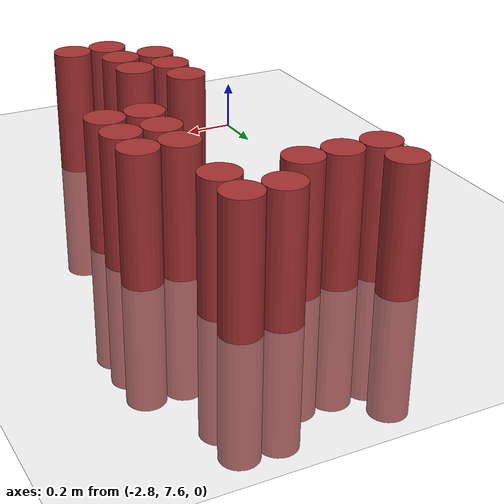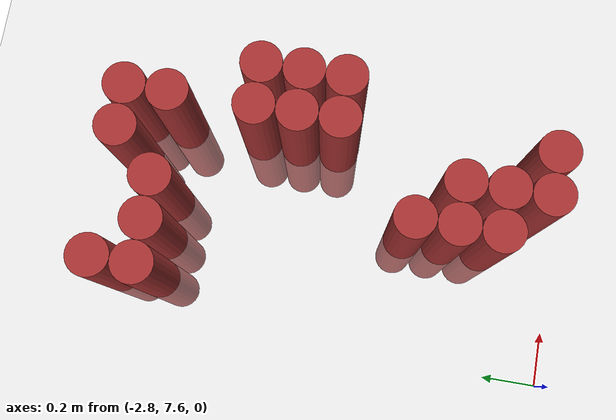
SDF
<sdf version="1.6">
 <world name="default">
  <model name="ground_plane">
   <static>1</static>
   <link name="link">
    <collision name="collision">
     <geometry><plane><normal>0 0 1</normal><size>100 100</size></plane></geometry>
     <surface><friction><ode><mu>100</mu><mu2>50</mu2></ode></friction></surface>
    </collision>
    <visual name="visual">
     <cast_shadows>0</cast_shadows>
     <geometry><plane><normal>0 0 1</normal><size>100 100</size></plane></geometry>
     <material>
      <script><uri>file://media/materials/scripts/gazebo.material</uri><name>Gazebo/Grey</name></script>
     </material>
    </visual>
   </link>
  </model>
  <model name="unit_cylinder_191">
   <static>1</static>
   <pose>-2.625000 9.075000 0.000000 0.000000 0.000000 0.000000</pose>
   <link name="link">
    <inertial>
     <mass>1</mass>
     <inertia><ixx>0.145833</ixx><ixy>0</ixy><ixz>0</ixz><iyy>0.145833</iyy><iyz>0</iyz><izz>0.125</izz></inertia>
    </inertial>
    <collision name="collision">
     <geometry><cylinder><radius>0.075000</radius><length>1</length></cylinder></geometry>
    </collision>
    <visual name="visual">
     <geometry><cylinder><radius>0.075000</radius><length>1</length></cylinder></geometry>
     <material>
      <ambient>0.648000 0.192000 0.192000 1</ambient>
      <diffuse>0.648000 0.192000 0.192000 1</diffuse>
     </material>
     <material>
      <script><name>Gazebo/Grey</name><uri>file://media/materials/scripts/gazebo.material</uri></script>
     </material>
    </visual>
    <sensor name="sensor_contact" type="contact"><contact><collision>collision</collision></contact></sensor>
   </link>
   <plugin filename="gz-sim-touchplugin-system" name="gz::sim::systems::TouchPlugin">
    <target>robot</target>
    <namespace>robot</namespace>
    <time>0.001</time>
    <enabled>true</enabled>
   </plugin>
  </model>
  <model name="unit_cylinder_192">
   <static>1</static>
   <pose>-2.625000 9.225000 0.000000 0.000000 0.000000 0.000000</pose>
   <link name="link">
    <inertial>
     <mass>1</mass>
     <inertia><ixx>0.145833</ixx><ixy>0</ixy><ixz>0</ixz><iyy>0.145833</iyy><iyz>0</iyz><izz>0.125</izz></inertia>
    </inertial>
    <collision name="collision">
     <geometry><cylinder><radius>0.075000</radius><length>1</length></cylinder></geometry>
    </collision>
    <visual name="visual">
     <geometry><cylinder><radius>0.075000</radius><length>1</length></cylinder></geometry>
     <material>
      <ambient>0.648000 0.192000 0.192000 1</ambient>
      <diffuse>0.648000 0.192000 0.192000 1</diffuse>
     </material>
     <material>
      <script><name>Gazebo/Grey</name><uri>file://media/materials/scripts/gazebo.material</uri></script>
     </material>
    </visual>
    <sensor name="sensor_contact" type="contact"><contact><collision>collision</collision></contact></sensor>
   </link>
   <plugin filename="gz-sim-touchplugin-system" name="gz::sim::systems::TouchPlugin">
    <target>robot</target>
    <namespace>robot</namespace>
    <time>0.001</time>
    <enabled>true</enabled>
   </plugin>
  </model>
  <model name="unit_cylinder_199">
   <static>1</static>
   <pose>-2.475000 9.075000 0.000000 0.000000 0.000000 0.000000</pose>
   <link name="link">
    <inertial>
     <mass>1</mass>
     <inertia><ixx>0.145833</ixx><ixy>0</ixy><ixz>0</ixz><iyy>0.145833</iyy><iyz>0</iyz><izz>0.125</izz></inertia>
    </inertial>
    <collision name="collision">
     <geometry><cylinder><radius>0.075000</radius><length>1</length></cylinder></geometry>
    </collision>
    <visual name="visual">
     <geometry><cylinder><radius>0.075000</radius><length>1</length></cylinder></geometry>
     <material>
      <ambient>0.648000 0.192000 0.192000 1</ambient>
      <diffuse>0.648000 0.192000 0.192000 1</diffuse>
     </material>
     <material>
      <script><name>Gazebo/Grey</name><uri>file://media/materials/scripts/gazebo.material</uri></script>
     </material>
    </visual>
    <sensor name="sensor_contact" type="contact"><contact><collision>collision</collision></contact></sensor>
   </link>
   <plugin filename="gz-sim-touchplugin-system" name="gz::sim::systems::TouchPlugin">
    <target>robot</target>
    <namespace>robot</namespace>
    <time>0.001</time>
    <enabled>true</enabled>
   </plugin>
  </model>
  <model name="unit_cylinder_206">
   <static>1</static>
   <pose>-2.325000 7.875000 0.000000 0.000000 0.000000 0.000000</pose>
   <link name="link">
    <inertial>
     <mass>1</mass>
     <inertia><ixx>0.145833</ixx><ixy>0</ixy><ixz>0</ixz><iyy>0.145833</iyy><iyz>0</iyz><izz>0.125</izz></inertia>
    </inertial>
    <collision name="collision">
     <geometry><cylinder><radius>0.075000</radius><length>1</length></cylinder></geometry>
    </collision>
    <visual name="visual">
     <geometry><cylinder><radius>0.075000</radius><length>1</length></cylinder></geometry>
     <material>
      <ambient>0.648000 0.192000 0.192000 1</ambient>
      <diffuse>0.648000 0.192000 0.192000 1</diffuse>
     </material>
     <material>
      <script><name>Gazebo/Grey</name><uri>file://media/materials/scripts/gazebo.material</uri></script>
     </material>
    </visual>
    <sensor name="sensor_contact" type="contact"><contact><collision>collision</collision></contact></sensor>
   </link>
   <plugin filename="gz-sim-touchplugin-system" name="gz::sim::systems::TouchPlugin">
    <target>robot</target>
    <namespace>robot</namespace>
    <time>0.001</time>
    <enabled>true</enabled>
   </plugin>
  </model>
  <model name="unit_cylinder_207">
   <static>1</static>
   <pose>-2.325000 8.025000 0.000000 0.000000 0.000000 0.000000</pose>
   <link name="link">
    <inertial>
     <mass>1</mass>
     <inertia><ixx>0.145833</ixx><ixy>0</ixy><ixz>0</ixz><iyy>0.145833</iyy><iyz>0</iyz><izz>0.125</izz></inertia>
    </inertial>
    <collision name="collision">
     <geometry><cylinder><radius>0.075000</radius><length>1</length></cylinder></geometry>
    </collision>
    <visual name="visual">
     <geometry><cylinder><radius>0.075000</radius><length>1</length></cylinder></geometry>
     <material>
      <ambient>0.648000 0.192000 0.192000 1</ambient>
      <diffuse>0.648000 0.192000 0.192000 1</diffuse>
     </material>
     <material>
      <script><name>Gazebo/Grey</name><uri>file://media/materials/scripts/gazebo.material</uri></script>
     </material>
    </visual>
    <sensor name="sensor_contact" type="contact"><contact><collision>collision</collision></contact></sensor>
   </link>
   <plugin filename="gz-sim-touchplugin-system" name="gz::sim::systems::TouchPlugin">
    <target>robot</target>
    <namespace>robot</namespace>
    <time>0.001</time>
    <enabled>true</enabled>
   </plugin>
  </model>
  <model name="unit_cylinder_208">
   <static>1</static>
   <pose>-2.325000 8.175000 0.000000 0.000000 0.000000 0.000000</pose>
   <link name="link">
    <inertial>
     <mass>1</mass>
     <inertia><ixx>0.145833</ixx><ixy>0</ixy><ixz>0</ixz><iyy>0.145833</iyy><iyz>0</iyz><izz>0.125</izz></inertia>
    </inertial>
    <collision name="collision">
     <geometry><cylinder><radius>0.075000</radius><length>1</length></cylinder></geometry>
    </collision>
    <visual name="visual">
     <geometry><cylinder><radius>0.075000</radius><length>1</length></cylinder></geometry>
     <material>
      <ambient>0.648000 0.192000 0.192000 1</ambient>
      <diffuse>0.648000 0.192000 0.192000 1</diffuse>
     </material>
     <material>
      <script><name>Gazebo/Grey</name><uri>file://media/materials/scripts/gazebo.material</uri></script>
     </material>
    </visual>
    <sensor name="sensor_contact" type="contact"><contact><collision>collision</collision></contact></sensor>
   </link>
   <plugin filename="gz-sim-touchplugin-system" name="gz::sim::systems::TouchPlugin">
    <target>robot</target>
    <namespace>robot</namespace>
    <time>0.001</time>
    <enabled>true</enabled>
   </plugin>
  </model>
  <model name="unit_cylinder_209">
   <static>1</static>
   <pose>-2.325000 9.075000 0.000000 0.000000 0.000000 0.000000</pose>
   <link name="link">
    <inertial>
     <mass>1</mass>
     <inertia><ixx>0.145833</ixx><ixy>0</ixy><ixz>0</ixz><iyy>0.145833</iyy><iyz>0</iyz><izz>0.125</izz></inertia>
    </inertial>
    <collision name="collision">
     <geometry><cylinder><radius>0.075000</radius><length>1</length></cylinder></geometry>
    </collision>
    <visual name="visual">
     <geometry><cylinder><radius>0.075000</radius><length>1</length></cylinder></geometry>
     <material>
      <ambient>0.648000 0.192000 0.192000 1</ambient>
      <diffuse>0.648000 0.192000 0.192000 1</diffuse>
     </material>
     <material>
      <script><name>Gazebo/Grey</name><uri>file://media/materials/scripts/gazebo.material</uri></script>
     </material>
    </visual>
    <sensor name="sensor_contact" type="contact"><contact><collision>collision</collision></contact></sensor>
   </link>
   <plugin filename="gz-sim-touchplugin-system" name="gz::sim::systems::TouchPlugin">
    <target>robot</target>
    <namespace>robot</namespace>
    <time>0.001</time>
    <enabled>true</enabled>
   </plugin>
  </model>
  <model name="unit_cylinder_213">
   <static>1</static>
   <pose>-2.175000 7.725000 0.000000 0.000000 0.000000 0.000000</pose>
   <link name="link">
    <inertial>
     <mass>1</mass>
     <inertia><ixx>0.145833</ixx><ixy>0</ixy><ixz>0</ixz><iyy>0.145833</iyy><iyz>0</iyz><izz>0.125</izz></inertia>
    </inertial>
    <collision name="collision">
     <geometry><cylinder><radius>0.075000</radius><length>1</length></cylinder></geometry>
    </collision>
    <visual name="visual">
     <geometry><cylinder><radius>0.075000</radius><length>1</length></cylinder></geometry>
     <material>
      <ambient>0.648000 0.192000 0.192000 1</ambient>
      <diffuse>0.648000 0.192000 0.192000 1</diffuse>
     </material>
     <material>
      <script><name>Gazebo/Grey</name><uri>file://media/materials/scripts/gazebo.material</uri></script>
     </material>
    </visual>
    <sensor name="sensor_contact" type="contact"><contact><collision>collision</collision></contact></sensor>
   </link>
   <plugin filename="gz-sim-touchplugin-system" name="gz::sim::systems::TouchPlugin">
    <target>robot</target>
    <namespace>robot</namespace>
    <time>0.001</time>
    <enabled>true</enabled>
   </plugin>
  </model>
  <model name="unit_cylinder_214">
   <static>1</static>
   <pose>-2.175000 7.875000 0.000000 0.000000 0.000000 0.000000</pose>
   <link name="link">
    <inertial>
     <mass>1</mass>
     <inertia><ixx>0.145833</ixx><ixy>0</ixy><ixz>0</ixz><iyy>0.145833</iyy><iyz>0</iyz><izz>0.125</izz></inertia>
    </inertial>
    <collision name="collision">
     <geometry><cylinder><radius>0.075000</radius><length>1</length></cylinder></geometry>
    </collision>
    <visual name="visual">
     <geometry><cylinder><radius>0.075000</radius><length>1</length></cylinder></geometry>
     <material>
      <ambient>0.648000 0.192000 0.192000 1</ambient>
      <diffuse>0.648000 0.192000 0.192000 1</diffuse>
     </material>
     <material>
      <script><name>Gazebo/Grey</name><uri>file://media/materials/scripts/gazebo.material</uri></script>
     </material>
    </visual>
    <sensor name="sensor_contact" type="contact"><contact><collision>collision</collision></contact></sensor>
   </link>
   <plugin filename="gz-sim-touchplugin-system" name="gz::sim::systems::TouchPlugin">
    <target>robot</target>
    <namespace>robot</namespace>
    <time>0.001</time>
    <enabled>true</enabled>
   </plugin>
  </model>
  <model name="unit_cylinder_215">
   <static>1</static>
   <pose>-2.175000 8.025000 0.000000 0.000000 0.000000 0.000000</pose>
   <link name="link">
    <inertial>
     <mass>1</mass>
     <inertia><ixx>0.145833</ixx><ixy>0</ixy><ixz>0</ixz><iyy>0.145833</iyy><iyz>0</iyz><izz>0.125</izz></inertia>
    </inertial>
    <collision name="collision">
     <geometry><cylinder><radius>0.075000</radius><length>1</length></cylinder></geometry>
    </collision>
    <visual name="visual">
     <geometry><cylinder><radius>0.075000</radius><length>1</length></cylinder></geometry>
     <material>
      <ambient>0.648000 0.192000 0.192000 1</ambient>
      <diffuse>0.648000 0.192000 0.192000 1</diffuse>
     </material>
     <material>
      <script><name>Gazebo/Grey</name><uri>file://media/materials/scripts/gazebo.material</uri></script>
     </material>
    </visual>
    <sensor name="sensor_contact" type="contact"><contact><collision>collision</collision></contact></sensor>
   </link>
   <plugin filename="gz-sim-touchplugin-system" name="gz::sim::systems::TouchPlugin">
    <target>robot</target>
    <namespace>robot</namespace>
    <time>0.001</time>
    <enabled>true</enabled>
   </plugin>
  </model>
  <model name="unit_cylinder_216">
   <static>1</static>
   <pose>-2.175000 9.225000 0.000000 0.000000 0.000000 0.000000</pose>
   <link name="link">
    <inertial>
     <mass>1</mass>
     <inertia><ixx>0.145833</ixx><ixy>0</ixy><ixz>0</ixz><iyy>0.145833</iyy><iyz>0</iyz><izz>0.125</izz></inertia>
    </inertial>
    <collision name="collision">
     <geometry><cylinder><radius>0.075000</radius><length>1</length></cylinder></geometry>
    </collision>
    <visual name="visual">
     <geometry><cylinder><radius>0.075000</radius><length>1</length></cylinder></geometry>
     <material>
      <ambient>0.648000 0.192000 0.192000 1</ambient>
      <diffuse>0.648000 0.192000 0.192000 1</diffuse>
     </material>
     <material>
      <script><name>Gazebo/Grey</name><uri>file://media/materials/scripts/gazebo.material</uri></script>
     </material>
    </visual>
    <sensor name="sensor_contact" type="contact"><contact><collision>collision</collision></contact></sensor>
   </link>
   <plugin filename="gz-sim-touchplugin-system" name="gz::sim::systems::TouchPlugin">
    <target>robot</target>
    <namespace>robot</namespace>
    <time>0.001</time>
    <enabled>true</enabled>
   </plugin>
  </model>
  <model name="unit_cylinder_217">
   <static>1</static>
   <pose>-2.025000 7.725000 0.000000 0.000000 0.000000 0.000000</pose>
   <link name="link">
    <inertial>
     <mass>1</mass>
     <inertia><ixx>0.145833</ixx><ixy>0</ixy><ixz>0</ixz><iyy>0.145833</iyy><iyz>0</iyz><izz>0.125</izz></inertia>
    </inertial>
    <collision name="collision">
     <geometry><cylinder><radius>0.075000</radius><length>1</length></cylinder></geometry>
    </collision>
    <visual name="visual">
     <geometry><cylinder><radius>0.075000</radius><length>1</length></cylinder></geometry>
     <material>
      <ambient>0.648000 0.192000 0.192000 1</ambient>
      <diffuse>0.648000 0.192000 0.192000 1</diffuse>
     </material>
     <material>
      <script><name>Gazebo/Grey</name><uri>file://media/materials/scripts/gazebo.material</uri></script>
     </material>
    </visual>
    <sensor name="sensor_contact" type="contact"><contact><collision>collision</collision></contact></sensor>
   </link>
   <plugin filename="gz-sim-touchplugin-system" name="gz::sim::systems::TouchPlugin">
    <target>robot</target>
    <namespace>robot</namespace>
    <time>0.001</time>
    <enabled>true</enabled>
   </plugin>
  </model>
  <model name="unit_cylinder_218">
   <static>1</static>
   <pose>-2.025000 8.475000 0.000000 0.000000 0.000000 0.000000</pose>
   <link name="link">
    <inertial>
     <mass>1</mass>
     <inertia><ixx>0.145833</ixx><ixy>0</ixy><ixz>0</ixz><iyy>0.145833</iyy><iyz>0</iyz><izz>0.125</izz></inertia>
    </inertial>
    <collision name="collision">
     <geometry><cylinder><radius>0.075000</radius><length>1</length></cylinder></geometry>
    </collision>
    <visual name="visual">
     <geometry><cylinder><radius>0.075000</radius><length>1</length></cylinder></geometry>
     <material>
      <ambient>0.648000 0.192000 0.192000 1</ambient>
      <diffuse>0.648000 0.192000 0.192000 1</diffuse>
     </material>
     <material>
      <script><name>Gazebo/Grey</name><uri>file://media/materials/scripts/gazebo.material</uri></script>
     </material>
    </visual>
    <sensor name="sensor_contact" type="contact"><contact><collision>collision</collision></contact></sensor>
   </link>
   <plugin filename="gz-sim-touchplugin-system" name="gz::sim::systems::TouchPlugin">
    <target>robot</target>
    <namespace>robot</namespace>
    <time>0.001</time>
    <enabled>true</enabled>
   </plugin>
  </model>
  <model name="unit_cylinder_219">
   <static>1</static>
   <pose>-2.025000 8.625000 0.000000 0.000000 0.000000 0.000000</pose>
   <link name="link">
    <inertial>
     <mass>1</mass>
     <inertia><ixx>0.145833</ixx><ixy>0</ixy><ixz>0</ixz><iyy>0.145833</iyy><iyz>0</iyz><izz>0.125</izz></inertia>
    </inertial>
    <collision name="collision">
     <geometry><cylinder><radius>0.075000</radius><length>1</length></cylinder></geometry>
    </collision>
    <visual name="visual">
     <geometry><cylinder><radius>0.075000</radius><length>1</length></cylinder></geometry>
     <material>
      <ambient>0.648000 0.192000 0.192000 1</ambient>
      <diffuse>0.648000 0.192000 0.192000 1</diffuse>
     </material>
     <material>
      <script><name>Gazebo/Grey</name><uri>file://media/materials/scripts/gazebo.material</uri></script>
     </material>
    </visual>
    <sensor name="sensor_contact" type="contact"><contact><collision>collision</collision></contact></sensor>
   </link>
   <plugin filename="gz-sim-touchplugin-system" name="gz::sim::systems::TouchPlugin">
    <target>robot</target>
    <namespace>robot</namespace>
    <time>0.001</time>
    <enabled>true</enabled>
   </plugin>
  </model>
  <model name="unit_cylinder_220">
   <static>1</static>
   <pose>-2.025000 8.775000 0.000000 0.000000 0.000000 0.000000</pose>
   <link name="link">
    <inertial>
     <mass>1</mass>
     <inertia><ixx>0.145833</ixx><ixy>0</ixy><ixz>0</ixz><iyy>0.145833</iyy><iyz>0</iyz><izz>0.125</izz></inertia>
    </inertial>
    <collision name="collision">
     <geometry><cylinder><radius>0.075000</radius><length>1</length></cylinder></geometry>
    </collision>
    <visual name="visual">
     <geometry><cylinder><radius>0.075000</radius><length>1</length></cylinder></geometry>
     <material>
      <ambient>0.648000 0.192000 0.192000 1</ambient>
      <diffuse>0.648000 0.192000 0.192000 1</diffuse>
     </material>
     <material>
      <script><name>Gazebo/Grey</name><uri>file://media/materials/scripts/gazebo.material</uri></script>
     </material>
    </visual>
    <sensor name="sensor_contact" type="contact"><contact><collision>collision</collision></contact></sensor>
   </link>
   <plugin filename="gz-sim-touchplugin-system" name="gz::sim::systems::TouchPlugin">
    <target>robot</target>
    <namespace>robot</namespace>
    <time>0.001</time>
    <enabled>true</enabled>
   </plugin>
  </model>
  <model name="unit_cylinder_221">
   <static>1</static>
   <pose>-2.025000 9.075000 0.000000 0.000000 0.000000 0.000000</pose>
   <link name="link">
    <inertial>
     <mass>1</mass>
     <inertia><ixx>0.145833</ixx><ixy>0</ixy><ixz>0</ixz><iyy>0.145833</iyy><iyz>0</iyz><izz>0.125</izz></inertia>
    </inertial>
    <collision name="collision">
     <geometry><cylinder><radius>0.075000</radius><length>1</length></cylinder></geometry>
    </collision>
    <visual name="visual">
     <geometry><cylinder><radius>0.075000</radius><length>1</length></cylinder></geometry>
     <material>
      <ambient>0.648000 0.192000 0.192000 1</ambient>
      <diffuse>0.648000 0.192000 0.192000 1</diffuse>
     </material>
     <material>
      <script><name>Gazebo/Grey</name><uri>file://media/materials/scripts/gazebo.material</uri></script>
     </material>
    </visual>
    <sensor name="sensor_contact" type="contact"><contact><collision>collision</collision></contact></sensor>
   </link>
   <plugin filename="gz-sim-touchplugin-system" name="gz::sim::systems::TouchPlugin">
    <target>robot</target>
    <namespace>robot</namespace>
    <time>0.001</time>
    <enabled>true</enabled>
   </plugin>
  </model>
  <model name="unit_cylinder_222">
   <static>1</static>
   <pose>-2.025000 9.225000 0.000000 0.000000 0.000000 0.000000</pose>
   <link name="link">
    <inertial>
     <mass>1</mass>
     <inertia><ixx>0.145833</ixx><ixy>0</ixy><ixz>0</ixz><iyy>0.145833</iyy><iyz>0</iyz><izz>0.125</izz></inertia>
    </inertial>
    <collision name="collision">
     <geometry><cylinder><radius>0.075000</radius><length>1</length></cylinder></geometry>
    </collision>
    <visual name="visual">
     <geometry><cylinder><radius>0.075000</radius><length>1</length></cylinder></geometry>
     <material>
      <ambient>0.648000 0.192000 0.192000 1</ambient>
      <diffuse>0.648000 0.192000 0.192000 1</diffuse>
     </material>
     <material>
      <script><name>Gazebo/Grey</name><uri>file://media/materials/scripts/gazebo.material</uri></script>
     </material>
    </visual>
    <sensor name="sensor_contact" type="contact"><contact><collision>collision</collision></contact></sensor>
   </link>
   <plugin filename="gz-sim-touchplugin-system" name="gz::sim::systems::TouchPlugin">
    <target>robot</target>
    <namespace>robot</namespace>
    <time>0.001</time>
    <enabled>true</enabled>
   </plugin>
  </model>
  <model name="unit_cylinder_223">
   <static>1</static>
   <pose>-1.875000 8.475000 0.000000 0.000000 0.000000 0.000000</pose>
   <link name="link">
    <inertial>
     <mass>1</mass>
     <inertia><ixx>0.145833</ixx><ixy>0</ixy><ixz>0</ixz><iyy>0.145833</iyy><iyz>0</iyz><izz>0.125</izz></inertia>
    </inertial>
    <collision name="collision">
     <geometry><cylinder><radius>0.075000</radius><length>1</length></cylinder></geometry>
    </collision>
    <visual name="visual">
     <geometry><cylinder><radius>0.075000</radius><length>1</length></cylinder></geometry>
     <material>
      <ambient>0.648000 0.192000 0.192000 1</ambient>
      <diffuse>0.648000 0.192000 0.192000 1</diffuse>
     </material>
     <material>
      <script><name>Gazebo/Grey</name><uri>file://media/materials/scripts/gazebo.material</uri></script>
     </material>
    </visual>
    <sensor name="sensor_contact" type="contact"><contact><collision>collision</collision></contact></sensor>
   </link>
   <plugin filename="gz-sim-touchplugin-system" name="gz::sim::systems::TouchPlugin">
    <target>robot</target>
    <namespace>robot</namespace>
    <time>0.001</time>
    <enabled>true</enabled>
   </plugin>
  </model>
  <model name="unit_cylinder_224">
   <static>1</static>
   <pose>-1.875000 8.625000 0.000000 0.000000 0.000000 0.000000</pose>
   <link name="link">
    <inertial>
     <mass>1</mass>
     <inertia><ixx>0.145833</ixx><ixy>0</ixy><ixz>0</ixz><iyy>0.145833</iyy><iyz>0</iyz><izz>0.125</izz></inertia>
    </inertial>
    <collision name="collision">
     <geometry><cylinder><radius>0.075000</radius><length>1</length></cylinder></geometry>
    </collision>
    <visual name="visual">
     <geometry><cylinder><radius>0.075000</radius><length>1</length></cylinder></geometry>
     <material>
      <ambient>0.648000 0.192000 0.192000 1</ambient>
      <diffuse>0.648000 0.192000 0.192000 1</diffuse>
     </material>
     <material>
      <script><name>Gazebo/Grey</name><uri>file://media/materials/scripts/gazebo.material</uri></script>
     </material>
    </visual>
    <sensor name="sensor_contact" type="contact"><contact><collision>collision</collision></contact></sensor>
   </link>
   <plugin filename="gz-sim-touchplugin-system" name="gz::sim::systems::TouchPlugin">
    <target>robot</target>
    <namespace>robot</namespace>
    <time>0.001</time>
    <enabled>true</enabled>
   </plugin>
  </model>
  <model name="unit_cylinder_225">
   <static>1</static>
   <pose>-1.875000 8.775000 0.000000 0.000000 0.000000 0.000000</pose>
   <link name="link">
    <inertial>
     <mass>1</mass>
     <inertia><ixx>0.145833</ixx><ixy>0</ixy><ixz>0</ixz><iyy>0.145833</iyy><iyz>0</iyz><izz>0.125</izz></inertia>
    </inertial>
    <collision name="collision">
     <geometry><cylinder><radius>0.075000</radius><length>1</length></cylinder></geometry>
    </collision>
    <visual name="visual">
     <geometry><cylinder><radius>0.075000</radius><length>1</length></cylinder></geometry>
     <material>
      <ambient>0.648000 0.192000 0.192000 1</ambient>
      <diffuse>0.648000 0.192000 0.192000 1</diffuse>
     </material>
     <material>
      <script><name>Gazebo/Grey</name><uri>file://media/materials/scripts/gazebo.material</uri></script>
     </material>
    </visual>
    <sensor name="sensor_contact" type="contact"><contact><collision>collision</collision></contact></sensor>
   </link>
   <plugin filename="gz-sim-touchplugin-system" name="gz::sim::systems::TouchPlugin">
    <target>robot</target>
    <namespace>robot</namespace>
    <time>0.001</time>
    <enabled>true</enabled>
   </plugin>
  </model>
 </world>
</sdf>
